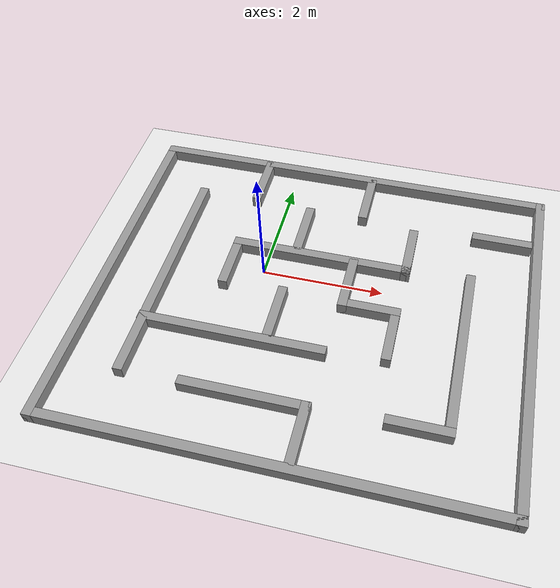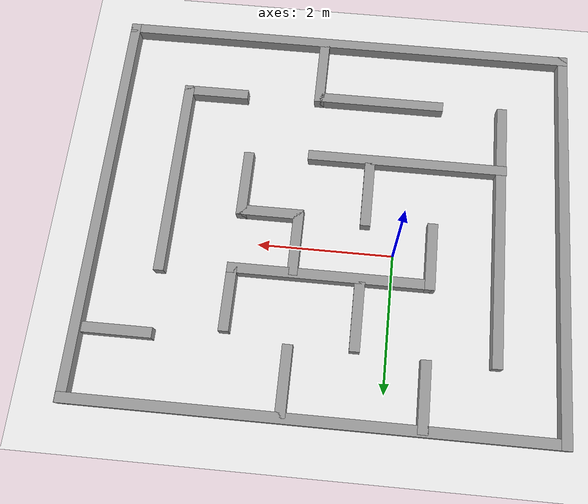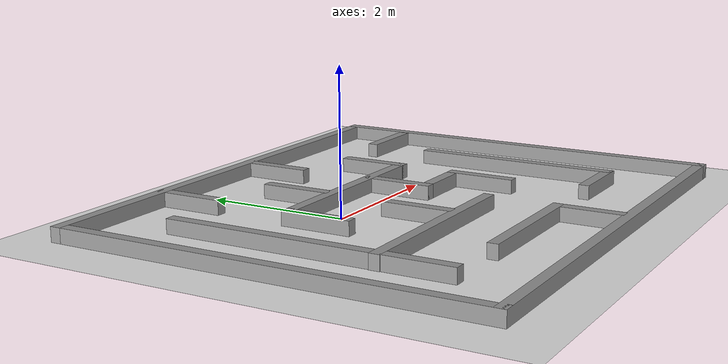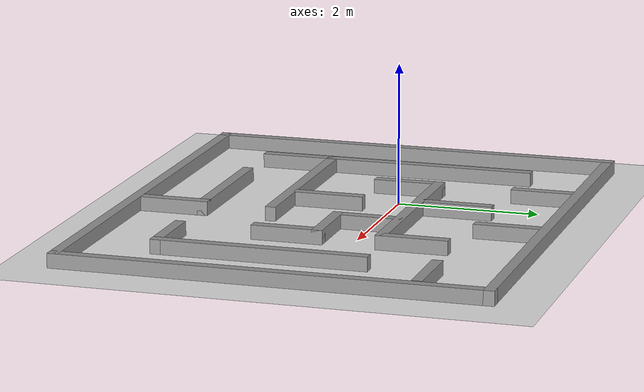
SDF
<sdf version="1.6">
 <world name="default">
  <light name="sun" type="directional">
   <pose>0 0 10 0 -0 0</pose>
   <diffuse>0.8 0.8 0.8 1</diffuse>
   <specular>0.2 0.2 0.2 1</specular>
   <attenuation>
    <range>1000</range>
    <constant>0.9</constant>
    <linear>0.01</linear>
    <quadratic>0.001</quadratic>
   </attenuation>
   <direction>0.5 0.1 -0.9</direction>
  </light>
  <scene><ambient>0.4 0.4 0.4 1</ambient><background>0.7 0.7 0.7 1</background><shadows>1</shadows></scene>
  <physics name="default_physics" default="0" type="ode">
   <max_step_size>0.01</max_step_size>
   <real_time_factor>1</real_time_factor>
   <real_time_update_rate>100</real_time_update_rate>
  </physics>
  <model name="ground_plane_0">
   <static>1</static>
   <link name="link">
    <collision name="collision">
     <geometry><plane><normal>0 0 1</normal><size>100 100</size></plane></geometry>
     <surface><friction><ode><mu>100</mu><mu2>50</mu2></ode></friction></surface>
    </collision>
    <visual name="visual">
     <cast_shadows>0</cast_shadows>
     <geometry><plane><normal>0 0 1</normal><size>100 100</size></plane></geometry>
     <material>
      <script><uri>file://media/materials/scripts/gazebo.material</uri><name>Gazebo/White</name></script>
     </material>
    </visual>
    <velocity_decay><linear>0</linear><angular>0</angular></velocity_decay>
   </link>
   <pose>0.497681 0 0 0 -0 0</pose>
  </model>
  <gravity>0 0 -9.8</gravity>
  <magnetic_field>6e-06 2.3e-05 -4.2e-05</magnetic_field>
  <atmosphere type="adiabatic"/>
  <audio><device>default</device></audio>
  <spherical_coordinates>
   <surface_model>EARTH_WGS84</surface_model>
   <latitude_deg>0</latitude_deg>
   <longitude_deg>0</longitude_deg>
   <elevation>0</elevation>
   <heading_deg>0</heading_deg>
  </spherical_coordinates>
  <model name="maze">
   <pose>0.957819 -0.478605 0 0 -0 0</pose>
   <link name="Wall_0">
    <collision name="Wall_0_Collision">
     <geometry><box><size>6 0.15 0.2</size></box></geometry>
     <pose>0 0 0.1 0 -0 0</pose>
    </collision>
    <visual name="Wall_0_Visual">
     <pose>0 0 0.1 0 -0 0</pose>
     <geometry><box><size>6 0.15 0.2</size></box></geometry>
     <material>
      <script><uri>file://media/materials/scripts/gazebo.material</uri><name>Gazebo/Grey</name></script>
      <ambient>1 1 1 1</ambient>
     </material>
     <meta><layer>0</layer></meta>
    </visual>
    <pose>-3.425 0 0 0 -0 -1.5708</pose>
   </link>
   <link name="Wall_1">
    <collision name="Wall_1_Collision">
     <geometry><box><size>7 0.15 0.2</size></box></geometry>
     <pose>0 0 0.1 0 -0 0</pose>
    </collision>
    <visual name="Wall_1_Visual">
     <pose>0 0 0.1 0 -0 0</pose>
     <geometry><box><size>7 0.15 0.2</size></box></geometry>
     <material>
      <script><uri>file://media/materials/scripts/gazebo.material</uri><name>Gazebo/Grey</name></script>
      <ambient>1 1 1 1</ambient>
     </material>
     <meta><layer>0</layer></meta>
    </visual>
    <pose>-0 -2.925 0 0 -0 0</pose>
   </link>
   <link name="Wall_10">
    <collision name="Wall_10_Collision">
     <geometry><box><size>1 0.15 0.2</size></box></geometry>
     <pose>0 0 0.1 0 -0 0</pose>
    </collision>
    <visual name="Wall_10_Visual">
     <pose>0 0 0.1 0 -0 0</pose>
     <geometry><box><size>1 0.15 0.2</size></box></geometry>
     <material>
      <script><uri>file://media/materials/scripts/gazebo.material</uri><name>Gazebo/Grey</name></script>
      <ambient>1 1 1 1</ambient>
     </material>
     <meta><layer>0</layer></meta>
    </visual>
    <pose>0.355 -2.37 0 0 -0 -1.5708</pose>
   </link>
   <link name="Wall_12">
    <collision name="Wall_12_Collision">
     <geometry><box><size>3 0.15 0.2</size></box></geometry>
     <pose>0 0 0.1 0 -0 0</pose>
    </collision>
    <visual name="Wall_12_Visual">
     <pose>0 0 0.1 0 -0 0</pose>
     <geometry><box><size>3 0.15 0.2</size></box></geometry>
     <material>
      <script><uri>file://media/materials/scripts/gazebo.material</uri><name>Gazebo/Grey</name></script>
      <ambient>1 1 1 1</ambient>
     </material>
     <meta><layer>0</layer></meta>
    </visual>
    <pose>2.395 -0.46 0 0 -0 -1.5708</pose>
   </link>
   <link name="Wall_13">
    <collision name="Wall_13_Collision">
     <geometry><box><size>1 0.15 0.2</size></box></geometry>
     <pose>0 0 0.1 0 -0 0</pose>
    </collision>
    <visual name="Wall_13_Visual">
     <pose>0 0 0.1 0 -0 0</pose>
     <geometry><box><size>1 0.15 0.2</size></box></geometry>
     <material>
      <script><uri>file://media/materials/scripts/gazebo.material</uri><name>Gazebo/Grey</name></script>
      <ambient>1 1 1 1</ambient>
     </material>
     <meta><layer>0</layer></meta>
    </visual>
    <pose>1.97 -1.885 0 0 -0 3.14159</pose>
   </link>
   <link name="Wall_15">
    <collision name="Wall_15_Collision">
     <geometry><box><size>1 0.15 0.2</size></box></geometry>
     <pose>0 0 0.1 0 -0 0</pose>
    </collision>
    <visual name="Wall_15_Visual">
     <pose>0 0 0.1 0 -0 0</pose>
     <geometry><box><size>1 0.15 0.2</size></box></geometry>
     <material>
      <script><uri>file://media/materials/scripts/gazebo.material</uri><name>Gazebo/Grey</name></script>
      <ambient>1 1 1 1</ambient>
     </material>
     <meta><layer>0</layer></meta>
    </visual>
    <pose>2.83 1.945 0 0 -0 0</pose>
   </link>
   <link name="Wall_17">
    <collision name="Wall_17_Collision">
     <geometry><box><size>1 0.15 0.2</size></box></geometry>
     <pose>0 0 0.1 0 -0 0</pose>
    </collision>
    <visual name="Wall_17_Visual">
     <pose>0 0 0.1 0 -0 0</pose>
     <geometry><box><size>1 0.15 0.2</size></box></geometry>
     <material>
      <script><uri>file://media/materials/scripts/gazebo.material</uri><name>Gazebo/Grey</name></script>
      <ambient>1 1 1 1</ambient>
     </material>
     <meta><layer>0</layer></meta>
    </visual>
    <pose>-1.505 0.48 0 0 -0 1.5708</pose>
   </link>
   <link name="Wall_18">
    <collision name="Wall_18_Collision">
     <geometry><box><size>3 0.15 0.2</size></box></geometry>
     <pose>0 0 0.1 0 -0 0</pose>
    </collision>
    <visual name="Wall_18_Visual">
     <pose>0 0 0.1 0 -0 0</pose>
     <geometry><box><size>3 0.15 0.2</size></box></geometry>
     <material>
      <script><uri>file://media/materials/scripts/gazebo.material</uri><name>Gazebo/Grey</name></script>
      <ambient>1 1 1 1</ambient>
     </material>
     <meta><layer>0</layer></meta>
    </visual>
    <pose>-0.08 0.905 0 0 -0 0</pose>
   </link>
   <link name="Wall_19">
    <collision name="Wall_19_Collision">
     <geometry><box><size>1 0.15 0.2</size></box></geometry>
     <pose>0 0 0.1 0 -0 0</pose>
    </collision>
    <visual name="Wall_19_Visual">
     <pose>0 0 0.1 0 -0 0</pose>
     <geometry><box><size>1 0.15 0.2</size></box></geometry>
     <material>
      <script><uri>file://media/materials/scripts/gazebo.material</uri><name>Gazebo/Grey</name></script>
      <ambient>1 1 1 1</ambient>
     </material>
     <meta><layer>0</layer></meta>
    </visual>
    <pose>1.345 1.33 0 0 -0 1.5708</pose>
   </link>
   <link name="Wall_2">
    <collision name="Wall_2_Collision">
     <geometry><box><size>6 0.15 0.2</size></box></geometry>
     <pose>0 0 0.1 0 -0 0</pose>
    </collision>
    <visual name="Wall_2_Visual">
     <pose>0 0 0.1 0 -0 0</pose>
     <geometry><box><size>6 0.15 0.2</size></box></geometry>
     <material>
      <script><uri>file://media/materials/scripts/gazebo.material</uri><name>Gazebo/Grey</name></script>
      <ambient>1 1 1 1</ambient>
     </material>
     <meta><layer>0</layer></meta>
    </visual>
    <pose>3.425 0 0 0 -0 1.5708</pose>
   </link>
   <link name="Wall_21">
    <collision name="Wall_21_Collision">
     <geometry><box><size>1 0.15 0.2</size></box></geometry>
     <pose>0 0 0.1 0 -0 0</pose>
    </collision>
    <visual name="Wall_21_Visual">
     <pose>0 0 0.1 0 -0 0</pose>
     <geometry><box><size>1 0.15 0.2</size></box></geometry>
     <material>
      <script><uri>file://media/materials/scripts/gazebo.material</uri><name>Gazebo/Grey</name></script>
      <ambient>1 1 1 1</ambient>
     </material>
     <meta><layer>0</layer></meta>
    </visual>
    <pose>-1.505 2.47 0 0 -0 -1.5708</pose>
   </link>
   <link name="Wall_23">
    <collision name="Wall_23_Collision">
     <geometry><box><size>1 0.15 0.2</size></box></geometry>
     <pose>0 0 0.1 0 -0 0</pose>
    </collision>
    <visual name="Wall_23_Visual">
     <pose>0 0 0.1 0 -0 0</pose>
     <geometry><box><size>1 0.15 0.2</size></box></geometry>
     <material>
      <script><uri>file://media/materials/scripts/gazebo.material</uri><name>Gazebo/Grey</name></script>
      <ambient>1 1 1 1</ambient>
     </material>
     <meta><layer>0</layer></meta>
    </visual>
    <pose>0.425 2.43 0 0 -0 -1.5708</pose>
   </link>
   <link name="Wall_25">
    <collision name="Wall_25_Collision">
     <geometry><box><size>1 0.15 0.2</size></box></geometry>
     <pose>0 0 0.1 0 -0 0</pose>
    </collision>
    <visual name="Wall_25_Visual">
     <pose>0 0 0.1 0 -0 0</pose>
     <geometry><box><size>1 0.15 0.2</size></box></geometry>
     <material>
      <script><uri>file://media/materials/scripts/gazebo.material</uri><name>Gazebo/Grey</name></script>
      <ambient>1 1 1 1</ambient>
     </material>
     <meta><layer>0</layer></meta>
    </visual>
    <pose>-0.505 1.45 0 0 -0 -1.5708</pose>
   </link>
   <link name="Wall_27">
    <collision name="Wall_27_Collision">
     <geometry><box><size>1 0.15 0.2</size></box></geometry>
     <pose>0 0 0.1 0 -0 0</pose>
    </collision>
    <visual name="Wall_27_Visual">
     <pose>0 0 0.1 0 -0 0</pose>
     <geometry><box><size>1 0.15 0.2</size></box></geometry>
     <material>
      <script><uri>file://media/materials/scripts/gazebo.material</uri><name>Gazebo/Grey</name></script>
      <ambient>1 1 1 1</ambient>
     </material>
     <meta><layer>0</layer></meta>
    </visual>
    <pose>-0.515 -0.4 0 0 -0 -1.5708</pose>
   </link>
   <link name="Wall_29">
    <collision name="Wall_29_Collision">
     <geometry><box><size>1 0.15 0.2</size></box></geometry>
     <pose>0 0 0.1 0 -0 0</pose>
    </collision>
    <visual name="Wall_29_Visual">
     <pose>0 0 0.1 0 -0 0</pose>
     <geometry><box><size>1 0.15 0.2</size></box></geometry>
     <material>
      <script><uri>file://media/materials/scripts/gazebo.material</uri><name>Gazebo/Grey</name></script>
      <ambient>1 1 1 1</ambient>
     </material>
     <meta><layer>0</layer></meta>
    </visual>
    <pose>0.475 0.44 0 0 -0 -1.5708</pose>
   </link>
   <link name="Wall_3">
    <collision name="Wall_3_Collision">
     <geometry><box><size>7 0.15 0.2</size></box></geometry>
     <pose>0 0 0.1 0 -0 0</pose>
    </collision>
    <visual name="Wall_3_Visual">
     <pose>0 0 0.1 0 -0 0</pose>
     <geometry><box><size>7 0.15 0.2</size></box></geometry>
     <material>
      <script><uri>file://media/materials/scripts/gazebo.material</uri><name>Gazebo/Grey</name></script>
      <ambient>1 1 1 1</ambient>
     </material>
     <meta><layer>0</layer></meta>
    </visual>
    <pose>-0 2.925 0 0 -0 3.14159</pose>
   </link>
   <link name="Wall_30">
    <collision name="Wall_30_Collision">
     <geometry><box><size>1 0.15 0.2</size></box></geometry>
     <pose>0 0 0.1 0 -0 0</pose>
    </collision>
    <visual name="Wall_30_Visual">
     <pose>0 0 0.1 0 -0 0</pose>
     <geometry><box><size>1 0.15 0.2</size></box></geometry>
     <material>
      <script><uri>file://media/materials/scripts/gazebo.material</uri><name>Gazebo/Grey</name></script>
      <ambient>1 1 1 1</ambient>
     </material>
     <meta><layer>0</layer></meta>
    </visual>
    <pose>0.9 0.015 0 0 -0 0</pose>
   </link>
   <link name="Wall_31">
    <collision name="Wall_31_Collision">
     <geometry><box><size>1 0.15 0.2</size></box></geometry>
     <pose>0 0 0.1 0 -0 0</pose>
    </collision>
    <visual name="Wall_31_Visual">
     <pose>0 0 0.1 0 -0 0</pose>
     <geometry><box><size>1 0.15 0.2</size></box></geometry>
     <material>
      <script><uri>file://media/materials/scripts/gazebo.material</uri><name>Gazebo/Grey</name></script>
      <ambient>1 1 1 1</ambient>
     </material>
     <meta><layer>0</layer></meta>
    </visual>
    <pose>1.325 -0.41 0 0 -0 -1.5708</pose>
   </link>
   <link name="Wall_5">
    <collision name="Wall_5_Collision">
     <geometry><box><size>4 0.15 0.2</size></box></geometry>
     <pose>0 0 0.1 0 -0 0</pose>
    </collision>
    <visual name="Wall_5_Visual">
     <pose>0 0 0.1 0 -0 0</pose>
     <geometry><box><size>4 0.15 0.2</size></box></geometry>
     <material>
      <script><uri>file://media/materials/scripts/gazebo.material</uri><name>Gazebo/Grey</name></script>
      <ambient>1 1 1 1</ambient>
     </material>
     <meta><layer>0</layer></meta>
    </visual>
    <pose>-2.485 0.01 0 0 -0 -1.5708</pose>
   </link>
   <link name="Wall_7">
    <collision name="Wall_7_Collision">
     <geometry><box><size>3 0.15 0.2</size></box></geometry>
     <pose>0 0 0.1 0 -0 0</pose>
    </collision>
    <visual name="Wall_7_Visual">
     <pose>0 0 0.1 0 -0 0</pose>
     <geometry><box><size>3 0.15 0.2</size></box></geometry>
     <material>
      <script><uri>file://media/materials/scripts/gazebo.material</uri><name>Gazebo/Grey</name></script>
      <ambient>1 1 1 1</ambient>
     </material>
     <meta><layer>0</layer></meta>
    </visual>
    <pose>-1.07 -0.955 0 0 -0 0</pose>
   </link>
   <link name="Wall_9">
    <collision name="Wall_9_Collision">
     <geometry><box><size>2 0.15 0.2</size></box></geometry>
     <pose>0 0 0.1 0 -0 0</pose>
    </collision>
    <visual name="Wall_9_Visual">
     <pose>0 0 0.1 0 -0 0</pose>
     <geometry><box><size>2 0.15 0.2</size></box></geometry>
     <material>
      <script><uri>file://media/materials/scripts/gazebo.material</uri><name>Gazebo/Grey</name></script>
      <ambient>1 1 1 1</ambient>
     </material>
     <meta><layer>0</layer></meta>
    </visual>
    <pose>-0.57 -1.945 0 0 -0 0</pose>
   </link>
   <static>1</static>
  </model>
 </world>
</sdf>
